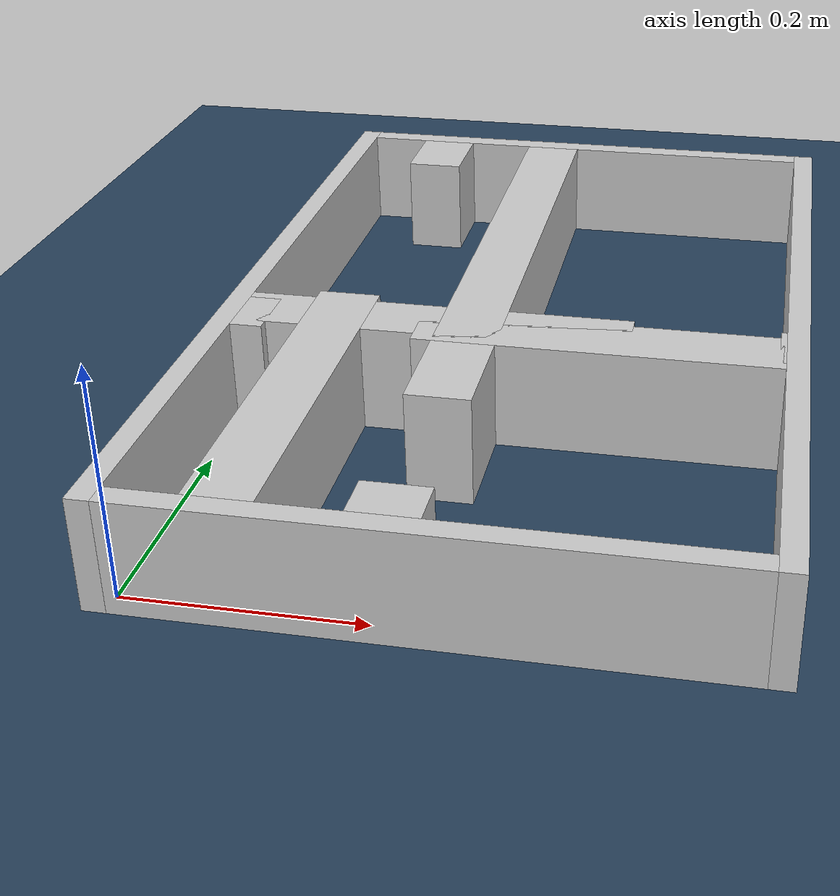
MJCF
<?xml version="1.0" ?>
<mujoco model="generated_real_template">
  <compiler angle="degree"/>
  <option timestep="0.002" integrator="implicitfast" iterations="100" cone="elliptic"/>
  <default>
    <geom density="1"/>
  </default>
  <asset>
    <texture builtin="gradient" height="3072" rgb1="0.3 0.5 0.7" rgb2="0 0 0" type="skybox" width="512"/>
    <texture builtin="checker" height="300" mark="edge" markrgb="0.8 0.8 0.8" name="groundplane" rgb1="0.2 0.3 0.4" rgb2="0.1 0.2 0.3" type="2d" width="300"/>
    <material name="groundplane" reflectance="0.2" texrepeat="5 5" texture="groundplane" texuniform="true"/>
  </asset>
  <worldbody>
    <light dir="0 0 -1" directional="true" pos="0 0 1.5"/>
    <geom name="floor" type="plane" condim="4" friction="0.5 0.005 0.001" material="groundplane" size="0 0 0.05"/>
    <body name="walls">
      <geom name="wall_boundary_left" type="box" condim="4" friction="1.0 0.005 0.0001" rgba="0.8 0.8 0.8 1" pos="-0.010000 0.387500 0.050000" euler="0 0 0.000000" size="0.010000 0.407500 0.050000"/>
      <geom name="wall_boundary_right" type="box" condim="4" friction="1.0 0.005 0.0001" rgba="0.8 0.8 0.8 1" pos="0.500000 0.387500 0.050000" euler="0 0 0.000000" size="0.010000 0.407500 0.050000"/>
      <geom name="wall_boundary_bottom" type="box" condim="4" friction="1.0 0.005 0.0001" rgba="0.8 0.8 0.8 1" pos="0.245000 -0.010000 0.050000" euler="0 0 0.000000" size="0.245000 0.010000 0.050000"/>
      <geom name="wall_boundary_top" type="box" condim="4" friction="1.0 0.005 0.0001" rgba="0.8 0.8 0.8 1" pos="0.245000 0.785000 0.050000" euler="0 0 0.000000" size="0.245000 0.010000 0.050000"/>
      <geom name="wall_inner_1_1" type="box" condim="4" friction="1.0 0.005 0.0001" rgba="0.8 0.8 0.8 1" pos="0.088640 0.175273 0.050000" euler="0 0 90.000000" size="0.175273 0.028500 0.050000"/>
      <geom name="wall_inner_1_2" type="box" condim="4" friction="1.0 0.005 0.0001" rgba="0.8 0.8 0.8 1" pos="0.088640 0.735112 0.050000" euler="0 0 90.000000" size="0.039888 0.028500 0.050000"/>
      <geom name="wall_inner_2_1" type="box" condim="4" friction="1.0 0.005 0.0001" rgba="0.8 0.8 0.8 1" pos="0.212218 0.020510 0.050000" euler="0 0 90.000000" size="0.020510 0.028500 0.050000"/>
      <geom name="wall_inner_2_2" type="box" condim="4" friction="1.0 0.005 0.0001" rgba="0.8 0.8 0.8 1" pos="0.212218 0.473468 0.050000" euler="0 0 90.000000" size="0.301532 0.028500 0.050000"/>
      <geom name="wall_inner_3_1" type="box" condim="4" friction="1.0 0.005 0.0001" rgba="0.8 0.8 0.8 1" pos="0.177561 0.308978 0.050000" euler="0 0 0.000000" size="0.177561 0.028500 0.050000"/>
      <geom name="wall_inner_3_2" type="box" condim="4" friction="1.0 0.005 0.0001" rgba="0.8 0.8 0.8 1" pos="0.487294 0.308978 0.050000" euler="0 0 0.000000" size="0.002706 0.028500 0.050000"/>
      <geom name="wall_inner_4_1" type="box" condim="4" friction="1.0 0.005 0.0001" rgba="0.8 0.8 0.8 1" pos="0.014749 0.298443 0.050000" euler="0 0 0.000000" size="0.014749 0.028500 0.050000"/>
      <geom name="wall_inner_4_2" type="box" condim="4" friction="1.0 0.005 0.0001" rgba="0.8 0.8 0.8 1" pos="0.327637 0.298443 0.050000" euler="0 0 0.000000" size="0.162363 0.028500 0.050000"/>
    </body>
  </worldbody>
</mujoco>
